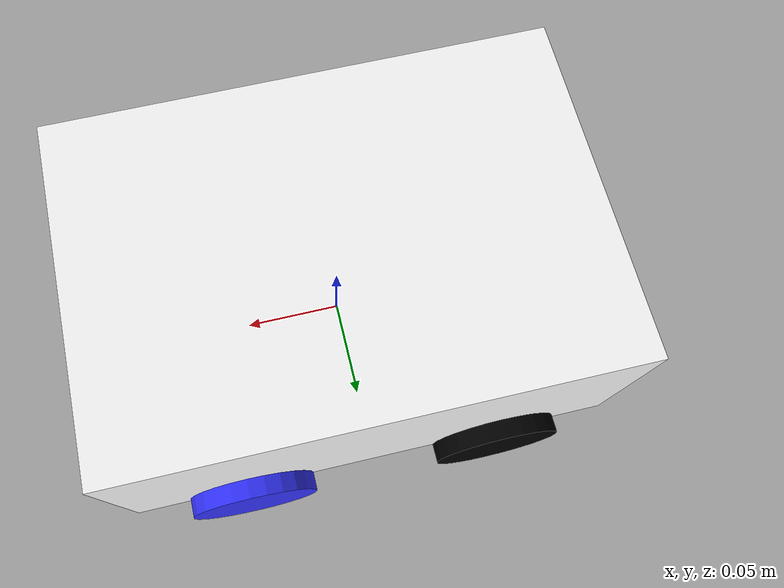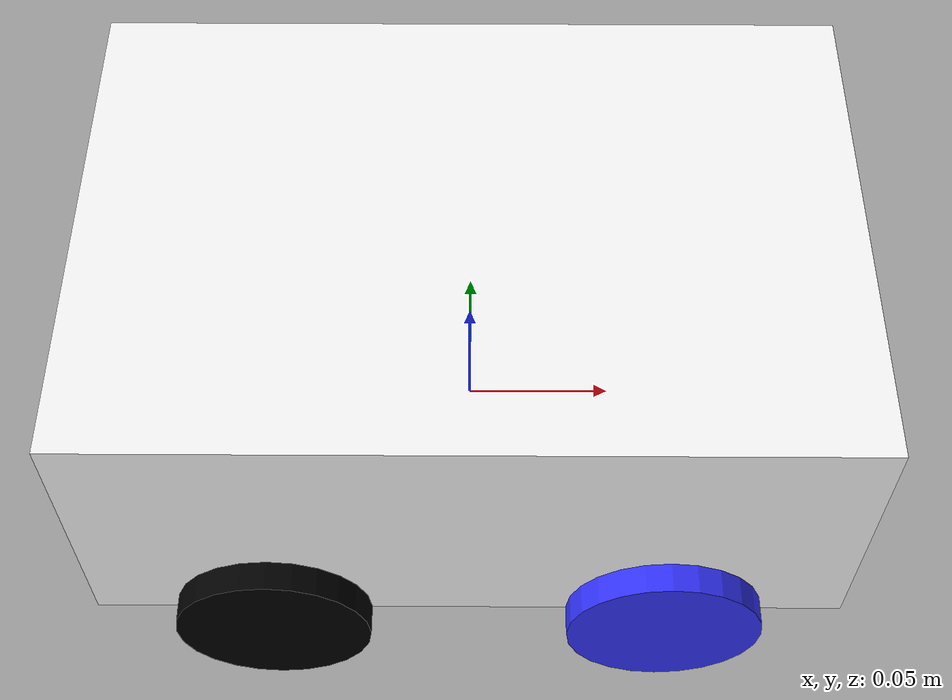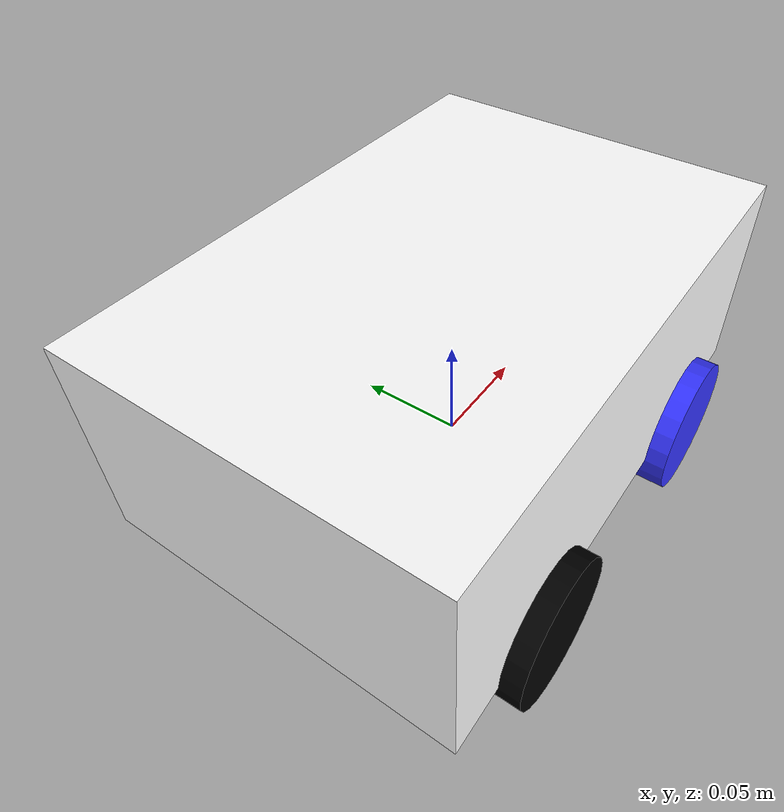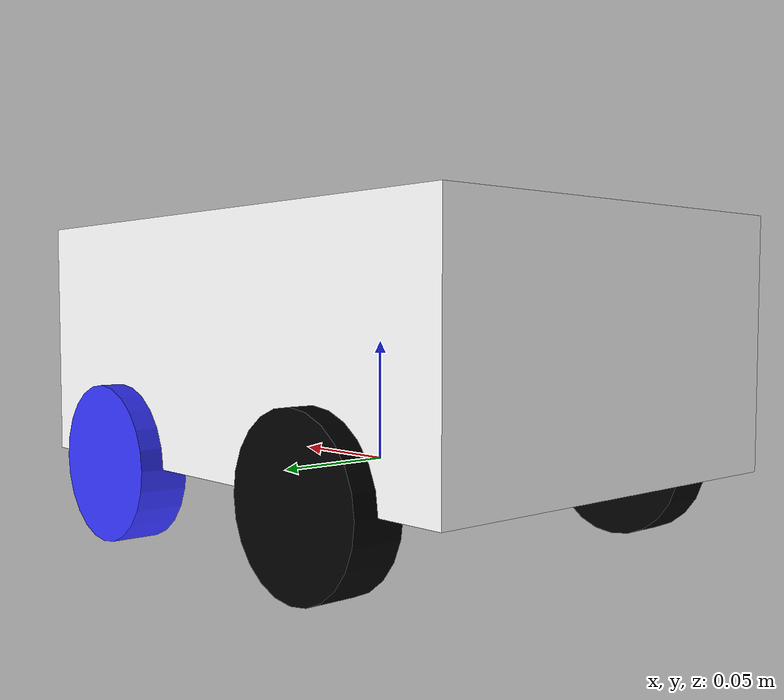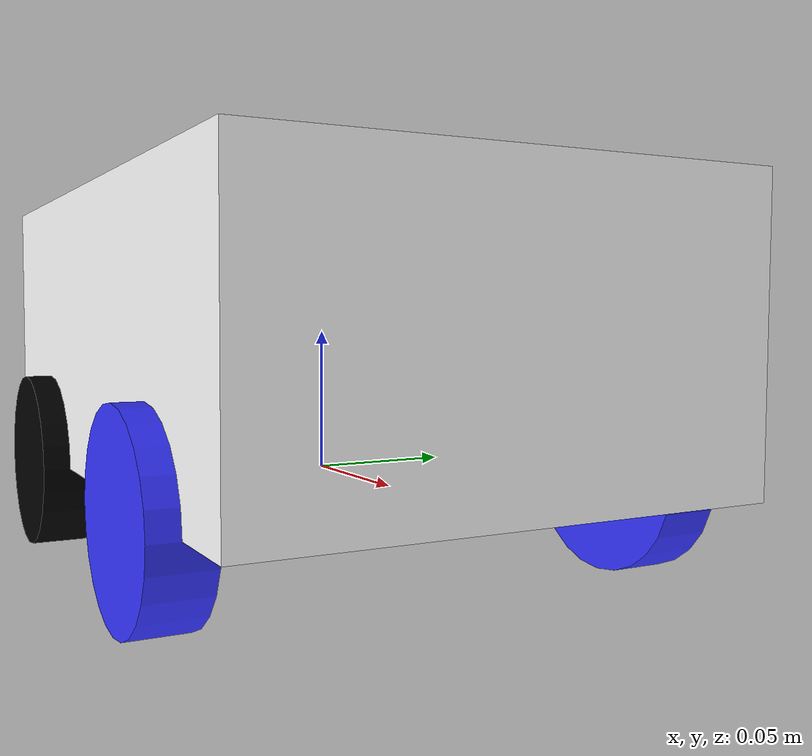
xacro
<?xml version="1.0"?>
<robot xmlns:xacro="http://www.ros.org/wiki/xacro"  name="robot">

    <xacro:include filename="inertial_macros.xacro"/>

    <material name="white">
        <color rgba='1 1 1 1'/>
    </material>

    <material name="orange">
        <color rgba='1 0.3 0.1 1'/>
    </material>
    <material name="blue">
        <color rgba='0.2 0.2 1 1'/>
    </material>
    <material name="black">
        <color rgba='0 0 0 1'/>
    </material>
    <material name="red">
        <color rgba='1 0 0 1'/>
    </material>

    <!--BASE LINK-->

    <link name="base_link">
    </link>

    <joint name="base_footprint_joint" type="fixed">
        <parent link="base_link"/>
        <child link="base_footprint"/>
        <origin xyz="0 0 0" rpy="0 0 0"/>
    </joint>

    <link name="base_footprint">

    </link>

    <!--CHASSIS LINK-->

    <joint name="chassis_joint" type="fixed">
        <parent link="base_link"/>
        <child link="chassis"/>
        <origin xyz="-0.125 0 0"/>
    </joint>

    <link name="chassis">
        <visual>
            <origin xyz="0.125 0 0.05"/>
            <geometry>
                <box size="0.25 0.173 0.1"/>
            </geometry>
            <material name="white"/>
        </visual>
        <collision>
            <origin xyz="0.125 0 0.05"/>
            <geometry>
                <box size="0.25 0.173 0.1"/>
            </geometry>
        </collision>
        <xacro:inertial_box mass="0.5" x="0.25" y="0.173" z="0.1" >
            <origin xyz="0.125 0 0.05" rpy="0 0 0"/>
        </xacro:inertial_box>
    </link>

    <gazebo reference="chassis">
        <material>Gazebo/White</material>
    </gazebo>

    <!--LEFT WHEEL LINK-->

    <joint name="left_front" type="continuous">
        <parent link="base_link"/>
        <child link="left_wheel_front"/>
        <origin xyz="0.065 0.086 0" rpy="-${pi/2} 0 0"/>
        <axis xyz="0 0 1"/>
    </joint>
    <link name="left_wheel_front">
        <visual>
            <geometry>
                <cylinder radius="0.0325" length="0.02"/>
            </geometry>
            <material name="blue"/>
        </visual>
        <collision>
            <geometry>
                <cylinder radius="0.0325" length="0.02"/>
            </geometry>
        </collision>
        <xacro:inertial_cylinder mass="0.1" length="0.02" radius="0.0325">
            <origin xyz="0 0 0" rpy="0 0 0"/>
        </xacro:inertial_cylinder>
    </link>

    <gazebo reference="left_wheel_front">
        <material>Gazebo/Blue</material>
    </gazebo>

    <joint name="left_rear" type="continuous">
        <parent link="base_link"/>
        <child link="left_wheel_rear"/>
        <origin xyz="-0.065 0.086 0" rpy="-${pi/2} 0 0"/>
        <axis xyz="0 0 1"/>
    </joint>

    <link name="left_wheel_rear">
        <visual>
            <geometry>
                <cylinder radius="0.0325" length="0.02"/>
            </geometry>
            <material name="black"/>
        </visual>
        <collision>
            <geometry>
                <cylinder radius="0.0325" length="0.02"/>
            </geometry>
        </collision>
        <xacro:inertial_cylinder mass="0.1" length="0.02" radius="0.0325">
            <origin xyz="0 0 0" rpy="0 0 0"/>
        </xacro:inertial_cylinder>
    </link>

    <gazebo reference="left_wheel_rear">
        <material>Gazebo/Black</material>
    </gazebo>

    <!--RIGHT WHEEL LINK-->

    <joint name="right_front" type="continuous">
        <parent link="base_link"/>
        <child link="right_wheel_front"/>
        <origin xyz="0.065 -0.086 0" rpy="${pi/2} 0 0"/>
        <axis xyz="0 0 -1"/>
    </joint>
    <link name="right_wheel_front">
        <visual>
            <geometry>
                <cylinder radius="0.0325" length="0.02"/>
            </geometry>
            <material name="blue"/>
        </visual>
        <collision>
            <geometry>
                <cylinder radius="0.0325" length="0.02"/>
            </geometry>
        </collision>
        <xacro:inertial_cylinder mass="0.1" length="0.02" radius="0.0325">
            <origin xyz="0 0 0" rpy="0 0 0"/>
        </xacro:inertial_cylinder>
    </link>

    <gazebo reference="right_wheel_front">
        <material>Gazebo/Blue</material>
    </gazebo>

    <!--RIGHT REAR WHEEL-->

    <joint name="right_rear" type="continuous">
        <parent link="base_link"/>
        <child link="right_wheel_rear"/>
        <origin xyz="-0.065 -0.086 0" rpy="${pi/2} 0 0"/>
        <axis xyz="0 0 -1"/>
    </joint>
    <link name="right_wheel_rear">
        <visual>
            <geometry>
                <cylinder radius="0.0325" length="0.02"/>
            </geometry>
            <material name="black"/>
        </visual>
        <collision>
            <geometry>
                <cylinder radius="0.0325" length="0.02"/>
            </geometry>
        </collision>
        <xacro:inertial_cylinder mass="0.1" length="0.02" radius="0.0325">
            <origin xyz="0 0 0" rpy="0 0 0"/>
        </xacro:inertial_cylinder>
    </link>

    <gazebo reference="right_wheel_rear">
        <material>Gazebo/Black</material>
    </gazebo>

</robot>
